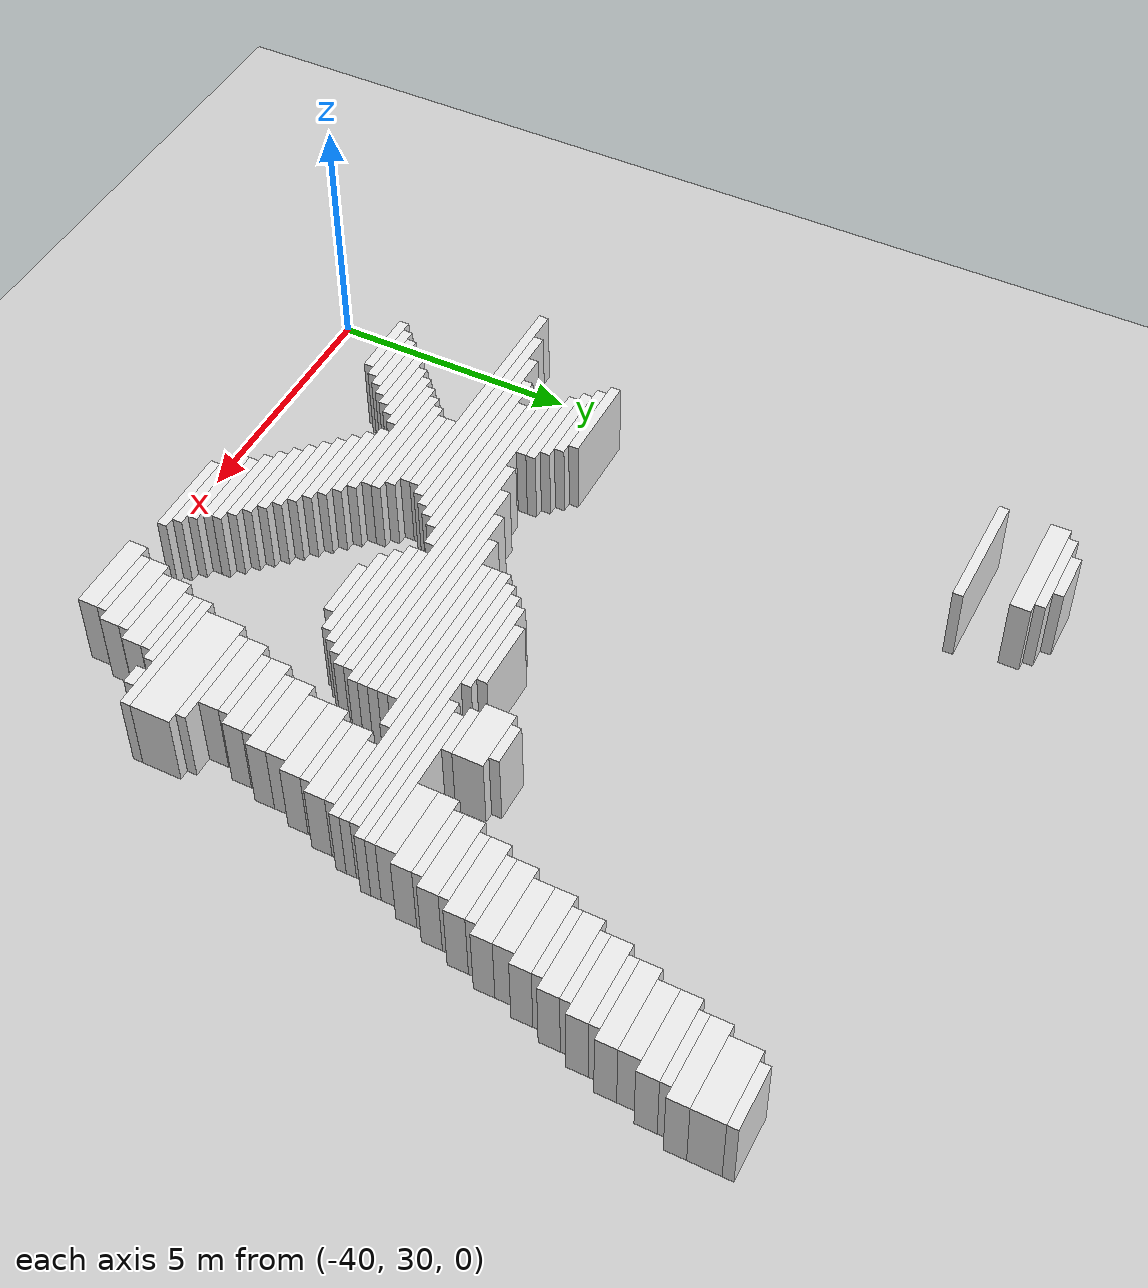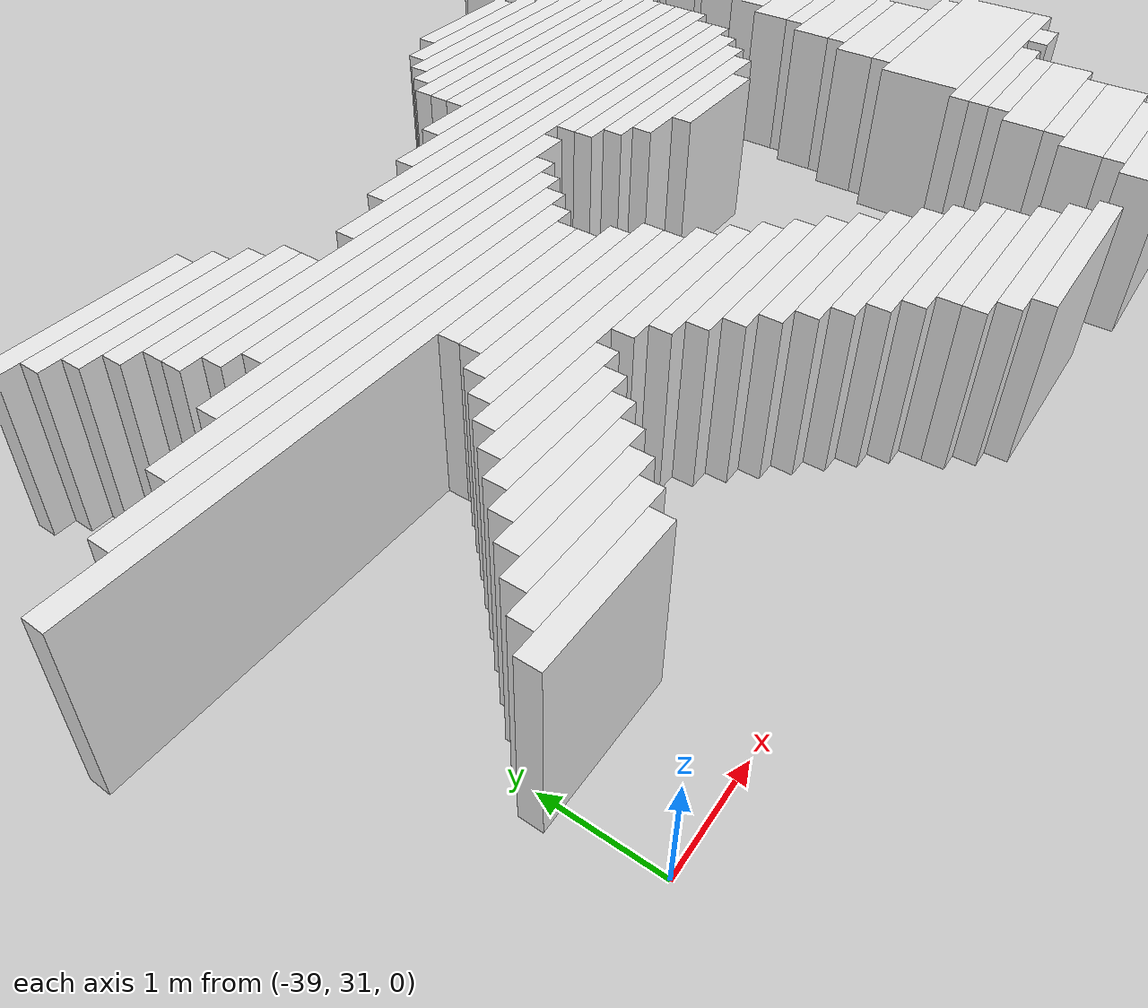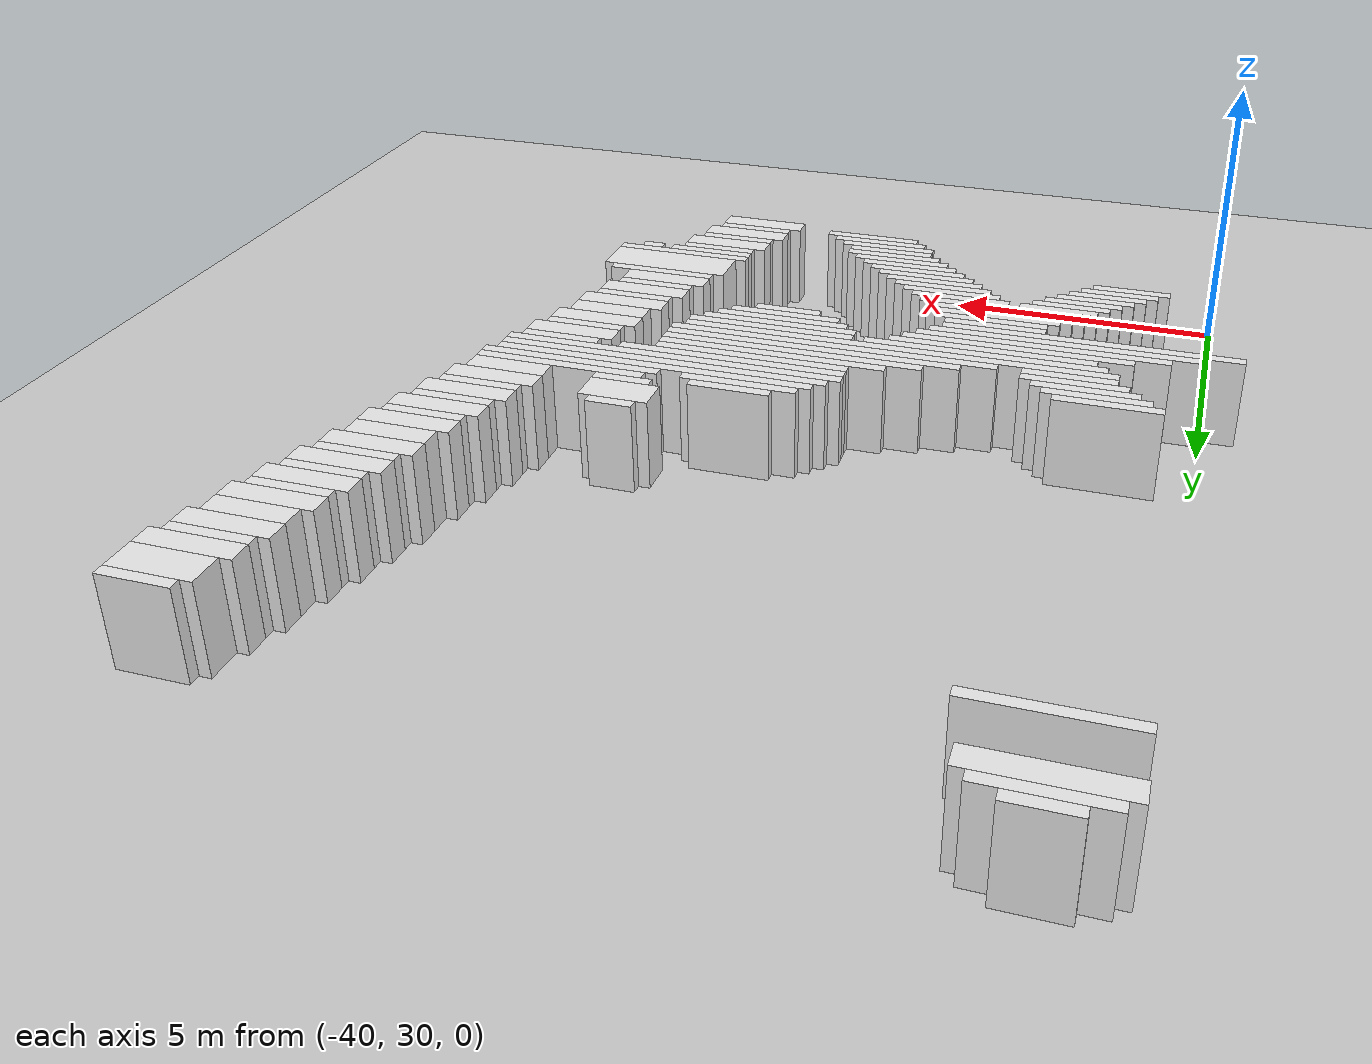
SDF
<sdf version="1.7">
 <world name="default">
  <model name="ground_plane">
   <static>1</static>
   <link name="link">
    <collision name="collision">
     <geometry><plane><normal>0 0 1</normal><size>120 120</size></plane></geometry>
    </collision>
    <visual name="visual">
     <geometry><plane><normal>0 0 1</normal><size>120 120</size></plane></geometry>
     <material>
      <script><uri>file://media/materials/scripts/gazebo.material</uri><name>Gazebo/Grey</name></script>
     </material>
    </visual>
   </link>
  </model>
  <model name="random_complex_02_model">
   <static>1</static>
   <link name="obs_86">
    <pose>-38.7000 45.9000 0.8000 0 0 0</pose>
    <collision name="obs_86_col"><geometry><box><size>1.0000 0.2000 1.6000</size></box></geometry></collision>
    <visual name="obs_86_vis">
     <geometry><box><size>1.0000 0.2000 1.6000</size></box></geometry>
     <material>
      <script><uri>file://media/materials/scripts/gazebo.material</uri><name>Gazebo/White</name></script>
     </material>
    </visual>
   </link>
   <link name="obs_92">
    <pose>-38.7000 45.7000 0.8000 0 0 0</pose>
    <collision name="obs_92_col"><geometry><box><size>1.8000 0.2000 1.6000</size></box></geometry></collision>
    <visual name="obs_92_vis">
     <geometry><box><size>1.8000 0.2000 1.6000</size></box></geometry>
     <material>
      <script><uri>file://media/materials/scripts/gazebo.material</uri><name>Gazebo/White</name></script>
     </material>
    </visual>
   </link>
   <link name="obs_107">
    <pose>-38.7000 45.4000 0.8000 0 0 0</pose>
    <collision name="obs_107_col"><geometry><box><size>2.2000 0.4000 1.6000</size></box></geometry></collision>
    <visual name="obs_107_vis">
     <geometry><box><size>2.2000 0.4000 1.6000</size></box></geometry>
     <material>
      <script><uri>file://media/materials/scripts/gazebo.material</uri><name>Gazebo/White</name></script>
     </material>
    </visual>
   </link>
   <link name="obs_119">
    <pose>-26.6000 45.1000 0.8000 0 0 0</pose>
    <collision name="obs_119_col"><geometry><box><size>1.2000 0.2000 1.6000</size></box></geometry></collision>
    <visual name="obs_119_vis">
     <geometry><box><size>1.2000 0.2000 1.6000</size></box></geometry>
     <material>
      <script><uri>file://media/materials/scripts/gazebo.material</uri><name>Gazebo/White</name></script>
     </material>
    </visual>
   </link>
   <link name="obs_144">
    <pose>-26.7000 44.7000 0.8000 0 0 0</pose>
    <collision name="obs_144_col"><geometry><box><size>1.4000 0.6000 1.6000</size></box></geometry></collision>
    <visual name="obs_144_vis">
     <geometry><box><size>1.4000 0.6000 1.6000</size></box></geometry>
     <material>
      <script><uri>file://media/materials/scripts/gazebo.material</uri><name>Gazebo/White</name></script>
     </material>
    </visual>
   </link>
   <link name="obs_152">
    <pose>-38.6000 44.3000 0.8000 0 0 0</pose>
    <collision name="obs_152_col"><geometry><box><size>2.4000 0.2000 1.6000</size></box></geometry></collision>
    <visual name="obs_152_vis">
     <geometry><box><size>2.4000 0.2000 1.6000</size></box></geometry>
     <material>
      <script><uri>file://media/materials/scripts/gazebo.material</uri><name>Gazebo/White</name></script>
     </material>
    </visual>
   </link>
   <link name="obs_157">
    <pose>-26.8000 44.2000 0.8000 0 0 0</pose>
    <collision name="obs_157_col"><geometry><box><size>1.6000 0.4000 1.6000</size></box></geometry></collision>
    <visual name="obs_157_vis">
     <geometry><box><size>1.6000 0.4000 1.6000</size></box></geometry>
     <material>
      <script><uri>file://media/materials/scripts/gazebo.material</uri><name>Gazebo/White</name></script>
     </material>
    </visual>
   </link>
   <link name="obs_169">
    <pose>-26.9000 43.9000 0.8000 0 0 0</pose>
    <collision name="obs_169_col"><geometry><box><size>1.4000 0.2000 1.6000</size></box></geometry></collision>
    <visual name="obs_169_vis">
     <geometry><box><size>1.4000 0.2000 1.6000</size></box></geometry>
     <material>
      <script><uri>file://media/materials/scripts/gazebo.material</uri><name>Gazebo/White</name></script>
     </material>
    </visual>
   </link>
   <link name="obs_179">
    <pose>-27.0000 43.6000 0.8000 0 0 0</pose>
    <collision name="obs_179_col"><geometry><box><size>1.6000 0.4000 1.6000</size></box></geometry></collision>
    <visual name="obs_179_vis">
     <geometry><box><size>1.6000 0.4000 1.6000</size></box></geometry>
     <material>
      <script><uri>file://media/materials/scripts/gazebo.material</uri><name>Gazebo/White</name></script>
     </material>
    </visual>
   </link>
   <link name="obs_194">
    <pose>-27.1000 43.2000 0.8000 0 0 0</pose>
    <collision name="obs_194_col"><geometry><box><size>1.4000 0.4000 1.6000</size></box></geometry></collision>
    <visual name="obs_194_vis">
     <geometry><box><size>1.4000 0.4000 1.6000</size></box></geometry>
     <material>
      <script><uri>file://media/materials/scripts/gazebo.material</uri><name>Gazebo/White</name></script>
     </material>
    </visual>
   </link>
   <link name="obs_208">
    <pose>-27.2000 42.8000 0.8000 0 0 0</pose>
    <collision name="obs_208_col"><geometry><box><size>1.6000 0.4000 1.6000</size></box></geometry></collision>
    <visual name="obs_208_vis">
     <geometry><box><size>1.6000 0.4000 1.6000</size></box></geometry>
     <material>
      <script><uri>file://media/materials/scripts/gazebo.material</uri><name>Gazebo/White</name></script>
     </material>
    </visual>
   </link>
   <link name="obs_218">
    <pose>-27.3000 42.5000 0.8000 0 0 0</pose>
    <collision name="obs_218_col"><geometry><box><size>1.4000 0.2000 1.6000</size></box></geometry></collision>
    <visual name="obs_218_vis">
     <geometry><box><size>1.4000 0.2000 1.6000</size></box></geometry>
     <material>
      <script><uri>file://media/materials/scripts/gazebo.material</uri><name>Gazebo/White</name></script>
     </material>
    </visual>
   </link>
   <link name="obs_228">
    <pose>-27.4000 42.2000 0.8000 0 0 0</pose>
    <collision name="obs_228_col"><geometry><box><size>1.6000 0.4000 1.6000</size></box></geometry></collision>
    <visual name="obs_228_vis">
     <geometry><box><size>1.6000 0.4000 1.6000</size></box></geometry>
     <material>
      <script><uri>file://media/materials/scripts/gazebo.material</uri><name>Gazebo/White</name></script>
     </material>
    </visual>
   </link>
   <link name="obs_239">
    <pose>-27.5000 41.9000 0.8000 0 0 0</pose>
    <collision name="obs_239_col"><geometry><box><size>1.4000 0.2000 1.6000</size></box></geometry></collision>
    <visual name="obs_239_vis">
     <geometry><box><size>1.4000 0.2000 1.6000</size></box></geometry>
     <material>
      <script><uri>file://media/materials/scripts/gazebo.material</uri><name>Gazebo/White</name></script>
     </material>
    </visual>
   </link>
   <link name="obs_252">
    <pose>-27.6000 41.6000 0.8000 0 0 0</pose>
    <collision name="obs_252_col"><geometry><box><size>1.6000 0.4000 1.6000</size></box></geometry></collision>
    <visual name="obs_252_vis">
     <geometry><box><size>1.6000 0.4000 1.6000</size></box></geometry>
     <material>
      <script><uri>file://media/materials/scripts/gazebo.material</uri><name>Gazebo/White</name></script>
     </material>
    </visual>
   </link>
   <link name="obs_263">
    <pose>-27.7000 41.3000 0.8000 0 0 0</pose>
    <collision name="obs_263_col"><geometry><box><size>1.4000 0.2000 1.6000</size></box></geometry></collision>
    <visual name="obs_263_vis">
     <geometry><box><size>1.4000 0.2000 1.6000</size></box></geometry>
     <material>
      <script><uri>file://media/materials/scripts/gazebo.material</uri><name>Gazebo/White</name></script>
     </material>
    </visual>
   </link>
   <link name="obs_279">
    <pose>-27.8000 41.0000 0.8000 0 0 0</pose>
    <collision name="obs_279_col"><geometry><box><size>1.6000 0.4000 1.6000</size></box></geometry></collision>
    <visual name="obs_279_vis">
     <geometry><box><size>1.6000 0.4000 1.6000</size></box></geometry>
     <material>
      <script><uri>file://media/materials/scripts/gazebo.material</uri><name>Gazebo/White</name></script>
     </material>
    </visual>
   </link>
   <link name="obs_299">
    <pose>-27.9000 40.6000 0.8000 0 0 0</pose>
    <collision name="obs_299_col"><geometry><box><size>1.4000 0.4000 1.6000</size></box></geometry></collision>
    <visual name="obs_299_vis">
     <geometry><box><size>1.4000 0.4000 1.6000</size></box></geometry>
     <material>
      <script><uri>file://media/materials/scripts/gazebo.material</uri><name>Gazebo/White</name></script>
     </material>
    </visual>
   </link>
   <link name="obs_319">
    <pose>-28.0000 40.2000 0.8000 0 0 0</pose>
    <collision name="obs_319_col"><geometry><box><size>1.6000 0.4000 1.6000</size></box></geometry></collision>
    <visual name="obs_319_vis">
     <geometry><box><size>1.6000 0.4000 1.6000</size></box></geometry>
     <material>
      <script><uri>file://media/materials/scripts/gazebo.material</uri><name>Gazebo/White</name></script>
     </material>
    </visual>
   </link>
   <link name="obs_332">
    <pose>-28.1000 39.9000 0.8000 0 0 0</pose>
    <collision name="obs_332_col"><geometry><box><size>1.4000 0.2000 1.6000</size></box></geometry></collision>
    <visual name="obs_332_vis">
     <geometry><box><size>1.4000 0.2000 1.6000</size></box></geometry>
     <material>
      <script><uri>file://media/materials/scripts/gazebo.material</uri><name>Gazebo/White</name></script>
     </material>
    </visual>
   </link>
   <link name="obs_344">
    <pose>-28.2000 39.6000 0.8000 0 0 0</pose>
    <collision name="obs_344_col"><geometry><box><size>1.6000 0.4000 1.6000</size></box></geometry></collision>
    <visual name="obs_344_vis">
     <geometry><box><size>1.6000 0.4000 1.6000</size></box></geometry>
     <material>
      <script><uri>file://media/materials/scripts/gazebo.material</uri><name>Gazebo/White</name></script>
     </material>
    </visual>
   </link>
   <link name="obs_357">
    <pose>-28.3000 39.3000 0.8000 0 0 0</pose>
    <collision name="obs_357_col"><geometry><box><size>1.4000 0.2000 1.6000</size></box></geometry></collision>
    <visual name="obs_357_vis">
     <geometry><box><size>1.4000 0.2000 1.6000</size></box></geometry>
     <material>
      <script><uri>file://media/materials/scripts/gazebo.material</uri><name>Gazebo/White</name></script>
     </material>
    </visual>
   </link>
   <link name="obs_371">
    <pose>-28.4000 39.0000 0.8000 0 0 0</pose>
    <collision name="obs_371_col"><geometry><box><size>1.6000 0.4000 1.6000</size></box></geometry></collision>
    <visual name="obs_371_vis">
     <geometry><box><size>1.6000 0.4000 1.6000</size></box></geometry>
     <material>
      <script><uri>file://media/materials/scripts/gazebo.material</uri><name>Gazebo/White</name></script>
     </material>
    </visual>
   </link>
   <link name="obs_381">
    <pose>-30.8000 38.7000 0.8000 0 0 0</pose>
    <collision name="obs_381_col"><geometry><box><size>0.8000 0.2000 1.6000</size></box></geometry></collision>
    <visual name="obs_381_vis">
     <geometry><box><size>0.8000 0.2000 1.6000</size></box></geometry>
     <material>
      <script><uri>file://media/materials/scripts/gazebo.material</uri><name>Gazebo/White</name></script>
     </material>
    </visual>
   </link>
   <link name="obs_382">
    <pose>-28.5000 38.7000 0.8000 0 0 0</pose>
    <collision name="obs_382_col"><geometry><box><size>1.4000 0.2000 1.6000</size></box></geometry></collision>
    <visual name="obs_382_vis">
     <geometry><box><size>1.4000 0.2000 1.6000</size></box></geometry>
     <material>
      <script><uri>file://media/materials/scripts/gazebo.material</uri><name>Gazebo/White</name></script>
     </material>
    </visual>
   </link>
   <link name="obs_402">
    <pose>-28.6000 38.4000 0.8000 0 0 0</pose>
    <collision name="obs_402_col"><geometry><box><size>1.6000 0.4000 1.6000</size></box></geometry></collision>
    <visual name="obs_402_vis">
     <geometry><box><size>1.6000 0.4000 1.6000</size></box></geometry>
     <material>
      <script><uri>file://media/materials/scripts/gazebo.material</uri><name>Gazebo/White</name></script>
     </material>
    </visual>
   </link>
   <link name="obs_411">
    <pose>-30.8000 38.3000 0.8000 0 0 0</pose>
    <collision name="obs_411_col"><geometry><box><size>1.2000 0.6000 1.6000</size></box></geometry></collision>
    <visual name="obs_411_vis">
     <geometry><box><size>1.2000 0.6000 1.6000</size></box></geometry>
     <material>
      <script><uri>file://media/materials/scripts/gazebo.material</uri><name>Gazebo/White</name></script>
     </material>
    </visual>
   </link>
   <link name="obs_418">
    <pose>-28.7000 38.0000 0.8000 0 0 0</pose>
    <collision name="obs_418_col"><geometry><box><size>1.4000 0.4000 1.6000</size></box></geometry></collision>
    <visual name="obs_418_vis">
     <geometry><box><size>1.4000 0.4000 1.6000</size></box></geometry>
     <material>
      <script><uri>file://media/materials/scripts/gazebo.material</uri><name>Gazebo/White</name></script>
     </material>
    </visual>
   </link>
   <link name="obs_421">
    <pose>-30.7000 37.9000 0.8000 0 0 0</pose>
    <collision name="obs_421_col"><geometry><box><size>1.0000 0.2000 1.6000</size></box></geometry></collision>
    <visual name="obs_421_vis">
     <geometry><box><size>1.0000 0.2000 1.6000</size></box></geometry>
     <material>
      <script><uri>file://media/materials/scripts/gazebo.material</uri><name>Gazebo/White</name></script>
     </material>
    </visual>
   </link>
   <link name="obs_429">
    <pose>-32.5000 37.7000 0.8000 0 0 0</pose>
    <collision name="obs_429_col"><geometry><box><size>1.4000 0.2000 1.6000</size></box></geometry></collision>
    <visual name="obs_429_vis">
     <geometry><box><size>1.4000 0.2000 1.6000</size></box></geometry>
     <material>
      <script><uri>file://media/materials/scripts/gazebo.material</uri><name>Gazebo/White</name></script>
     </material>
    </visual>
   </link>
   <link name="obs_430">
    <pose>-29.5000 37.7000 0.8000 0 0 0</pose>
    <collision name="obs_430_col"><geometry><box><size>3.0000 0.2000 1.6000</size></box></geometry></collision>
    <visual name="obs_430_vis">
     <geometry><box><size>3.0000 0.2000 1.6000</size></box></geometry>
     <material>
      <script><uri>file://media/materials/scripts/gazebo.material</uri><name>Gazebo/White</name></script>
     </material>
    </visual>
   </link>
   <link name="obs_438">
    <pose>-32.6000 37.5000 0.8000 0 0 0</pose>
    <collision name="obs_438_col"><geometry><box><size>2.0000 0.2000 1.6000</size></box></geometry></collision>
    <visual name="obs_438_vis">
     <geometry><box><size>2.0000 0.2000 1.6000</size></box></geometry>
     <material>
      <script><uri>file://media/materials/scripts/gazebo.material</uri><name>Gazebo/White</name></script>
     </material>
    </visual>
   </link>
   <link name="obs_439">
    <pose>-29.6000 37.5000 0.8000 0 0 0</pose>
    <collision name="obs_439_col"><geometry><box><size>3.2000 0.2000 1.6000</size></box></geometry></collision>
    <visual name="obs_439_vis">
     <geometry><box><size>3.2000 0.2000 1.6000</size></box></geometry>
     <material>
      <script><uri>file://media/materials/scripts/gazebo.material</uri><name>Gazebo/White</name></script>
     </material>
    </visual>
   </link>
   <link name="obs_446">
    <pose>-31.0000 37.3000 0.8000 0 0 0</pose>
    <collision name="obs_446_col"><geometry><box><size>5.6000 0.2000 1.6000</size></box></geometry></collision>
    <visual name="obs_446_vis">
     <geometry><box><size>5.6000 0.2000 1.6000</size></box></geometry>
     <material>
      <script><uri>file://media/materials/scripts/gazebo.material</uri><name>Gazebo/White</name></script>
     </material>
    </visual>
   </link>
   <link name="obs_451">
    <pose>-31.1000 37.1000 0.8000 0 0 0</pose>
    <collision name="obs_451_col"><geometry><box><size>5.8000 0.2000 1.6000</size></box></geometry></collision>
    <visual name="obs_451_vis">
     <geometry><box><size>5.8000 0.2000 1.6000</size></box></geometry>
     <material>
      <script><uri>file://media/materials/scripts/gazebo.material</uri><name>Gazebo/White</name></script>
     </material>
    </visual>
   </link>
   <link name="obs_459">
    <pose>-31.2000 36.9000 0.8000 0 0 0</pose>
    <collision name="obs_459_col"><geometry><box><size>6.0000 0.2000 1.6000</size></box></geometry></collision>
    <visual name="obs_459_vis">
     <geometry><box><size>6.0000 0.2000 1.6000</size></box></geometry>
     <material>
      <script><uri>file://media/materials/scripts/gazebo.material</uri><name>Gazebo/White</name></script>
     </material>
    </visual>
   </link>
   <link name="obs_463">
    <pose>-32.2000 36.7000 0.8000 0 0 0</pose>
    <collision name="obs_463_col"><geometry><box><size>4.0000 0.2000 1.6000</size></box></geometry></collision>
    <visual name="obs_463_vis">
     <geometry><box><size>4.0000 0.2000 1.6000</size></box></geometry>
     <material>
      <script><uri>file://media/materials/scripts/gazebo.material</uri><name>Gazebo/White</name></script>
     </material>
    </visual>
   </link>
   <link name="obs_464">
    <pose>-29.1000 36.7000 0.8000 0 0 0</pose>
    <collision name="obs_464_col"><geometry><box><size>1.4000 0.2000 1.6000</size></box></geometry></collision>
    <visual name="obs_464_vis">
     <geometry><box><size>1.4000 0.2000 1.6000</size></box></geometry>
     <material>
      <script><uri>file://media/materials/scripts/gazebo.material</uri><name>Gazebo/White</name></script>
     </material>
    </visual>
   </link>
   <link name="obs_471">
    <pose>-38.5000 36.5000 0.8000 0 0 0</pose>
    <collision name="obs_471_col"><geometry><box><size>1.8000 0.2000 1.6000</size></box></geometry></collision>
    <visual name="obs_471_vis">
     <geometry><box><size>1.8000 0.2000 1.6000</size></box></geometry>
     <material>
      <script><uri>file://media/materials/scripts/gazebo.material</uri><name>Gazebo/White</name></script>
     </material>
    </visual>
   </link>
   <link name="obs_472">
    <pose>-32.5000 36.5000 0.8000 0 0 0</pose>
    <collision name="obs_472_col"><geometry><box><size>3.4000 0.2000 1.6000</size></box></geometry></collision>
    <visual name="obs_472_vis">
     <geometry><box><size>3.4000 0.2000 1.6000</size></box></geometry>
     <material>
      <script><uri>file://media/materials/scripts/gazebo.material</uri><name>Gazebo/White</name></script>
     </material>
    </visual>
   </link>
   <link name="obs_477">
    <pose>-29.2000 36.4000 0.8000 0 0 0</pose>
    <collision name="obs_477_col"><geometry><box><size>1.6000 0.4000 1.6000</size></box></geometry></collision>
    <visual name="obs_477_vis">
     <geometry><box><size>1.6000 0.4000 1.6000</size></box></geometry>
     <material>
      <script><uri>file://media/materials/scripts/gazebo.material</uri><name>Gazebo/White</name></script>
     </material>
    </visual>
   </link>
   <link name="obs_480">
    <pose>-38.3000 36.3000 0.8000 0 0 0</pose>
    <collision name="obs_480_col"><geometry><box><size>1.8000 0.2000 1.6000</size></box></geometry></collision>
    <visual name="obs_480_vis">
     <geometry><box><size>1.8000 0.2000 1.6000</size></box></geometry>
     <material>
      <script><uri>file://media/materials/scripts/gazebo.material</uri><name>Gazebo/White</name></script>
     </material>
    </visual>
   </link>
   <link name="obs_481">
    <pose>-32.8000 36.3000 0.8000 0 0 0</pose>
    <collision name="obs_481_col"><geometry><box><size>4.0000 0.2000 1.6000</size></box></geometry></collision>
    <visual name="obs_481_vis">
     <geometry><box><size>4.0000 0.2000 1.6000</size></box></geometry>
     <material>
      <script><uri>file://media/materials/scripts/gazebo.material</uri><name>Gazebo/White</name></script>
     </material>
    </visual>
   </link>
   <link name="obs_489">
    <pose>-38.1000 36.1000 0.8000 0 0 0</pose>
    <collision name="obs_489_col"><geometry><box><size>1.8000 0.2000 1.6000</size></box></geometry></collision>
    <visual name="obs_489_vis">
     <geometry><box><size>1.8000 0.2000 1.6000</size></box></geometry>
     <material>
      <script><uri>file://media/materials/scripts/gazebo.material</uri><name>Gazebo/White</name></script>
     </material>
    </visual>
   </link>
   <link name="obs_490">
    <pose>-33.1000 36.1000 0.8000 0 0 0</pose>
    <collision name="obs_490_col"><geometry><box><size>4.6000 0.2000 1.6000</size></box></geometry></collision>
    <visual name="obs_490_vis">
     <geometry><box><size>4.6000 0.2000 1.6000</size></box></geometry>
     <material>
      <script><uri>file://media/materials/scripts/gazebo.material</uri><name>Gazebo/White</name></script>
     </material>
    </visual>
   </link>
   <link name="obs_491">
    <pose>-29.3000 36.1000 0.8000 0 0 0</pose>
    <collision name="obs_491_col"><geometry><box><size>1.4000 0.2000 1.6000</size></box></geometry></collision>
    <visual name="obs_491_vis">
     <geometry><box><size>1.4000 0.2000 1.6000</size></box></geometry>
     <material>
      <script><uri>file://media/materials/scripts/gazebo.material</uri><name>Gazebo/White</name></script>
     </material>
    </visual>
   </link>
   <link name="obs_500">
    <pose>-37.9000 35.9000 0.8000 0 0 0</pose>
    <collision name="obs_500_col"><geometry><box><size>1.8000 0.2000 1.6000</size></box></geometry></collision>
    <visual name="obs_500_vis">
     <geometry><box><size>1.8000 0.2000 1.6000</size></box></geometry>
     <material>
      <script><uri>file://media/materials/scripts/gazebo.material</uri><name>Gazebo/White</name></script>
     </material>
    </visual>
   </link>
   <link name="obs_501">
    <pose>-33.4000 35.9000 0.8000 0 0 0</pose>
    <collision name="obs_501_col"><geometry><box><size>5.2000 0.2000 1.6000</size></box></geometry></collision>
    <visual name="obs_501_vis">
     <geometry><box><size>5.2000 0.2000 1.6000</size></box></geometry>
     <material>
      <script><uri>file://media/materials/scripts/gazebo.material</uri><name>Gazebo/White</name></script>
     </material>
    </visual>
   </link>
   <link name="obs_508">
    <pose>-29.4000 35.8000 0.8000 0 0 0</pose>
    <collision name="obs_508_col"><geometry><box><size>1.6000 0.4000 1.6000</size></box></geometry></collision>
    <visual name="obs_508_vis">
     <geometry><box><size>1.6000 0.4000 1.6000</size></box></geometry>
     <material>
      <script><uri>file://media/materials/scripts/gazebo.material</uri><name>Gazebo/White</name></script>
     </material>
    </visual>
   </link>
   <link name="obs_511">
    <pose>-37.8000 35.7000 0.8000 0 0 0</pose>
    <collision name="obs_511_col"><geometry><box><size>1.6000 0.2000 1.6000</size></box></geometry></collision>
    <visual name="obs_511_vis">
     <geometry><box><size>1.6000 0.2000 1.6000</size></box></geometry>
     <material>
      <script><uri>file://media/materials/scripts/gazebo.material</uri><name>Gazebo/White</name></script>
     </material>
    </visual>
   </link>
   <link name="obs_512">
    <pose>-33.7000 35.7000 0.8000 0 0 0</pose>
    <collision name="obs_512_col"><geometry><box><size>5.8000 0.2000 1.6000</size></box></geometry></collision>
    <visual name="obs_512_vis">
     <geometry><box><size>5.8000 0.2000 1.6000</size></box></geometry>
     <material>
      <script><uri>file://media/materials/scripts/gazebo.material</uri><name>Gazebo/White</name></script>
     </material>
    </visual>
   </link>
   <link name="obs_518">
    <pose>-34.8000 35.5000 0.8000 0 0 0</pose>
    <collision name="obs_518_col"><geometry><box><size>7.6000 0.2000 1.6000</size></box></geometry></collision>
    <visual name="obs_518_vis">
     <geometry><box><size>7.6000 0.2000 1.6000</size></box></geometry>
     <material>
      <script><uri>file://media/materials/scripts/gazebo.material</uri><name>Gazebo/White</name></script>
     </material>
    </visual>
   </link>
   <link name="obs_526">
    <pose>-29.5000 35.4000 0.8000 0 0 0</pose>
    <collision name="obs_526_col"><geometry><box><size>1.4000 0.4000 1.6000</size></box></geometry></collision>
    <visual name="obs_526_vis">
     <geometry><box><size>1.4000 0.4000 1.6000</size></box></geometry>
     <material>
      <script><uri>file://media/materials/scripts/gazebo.material</uri><name>Gazebo/White</name></script>
     </material>
    </visual>
   </link>
   <link name="obs_528">
    <pose>-36.3000 35.3000 0.8000 0 0 0</pose>
    <collision name="obs_528_col"><geometry><box><size>4.2000 0.2000 1.6000</size></box></geometry></collision>
    <visual name="obs_528_vis">
     <geometry><box><size>4.2000 0.2000 1.6000</size></box></geometry>
     <material>
      <script><uri>file://media/materials/scripts/gazebo.material</uri><name>Gazebo/White</name></script>
     </material>
    </visual>
   </link>
   <link name="obs_529">
    <pose>-32.5000 35.3000 0.8000 0 0 0</pose>
    <collision name="obs_529_col"><geometry><box><size>3.0000 0.2000 1.6000</size></box></geometry></collision>
    <visual name="obs_529_vis">
     <geometry><box><size>3.0000 0.2000 1.6000</size></box></geometry>
     <material>
      <script><uri>file://media/materials/scripts/gazebo.material</uri><name>Gazebo/White</name></script>
     </material>
    </visual>
   </link>
   <link name="obs_537">
    <pose>-36.4000 35.1000 0.8000 0 0 0</pose>
    <collision name="obs_537_col"><geometry><box><size>3.6000 0.2000 1.6000</size></box></geometry></collision>
    <visual name="obs_537_vis">
     <geometry><box><size>3.6000 0.2000 1.6000</size></box></geometry>
     <material>
      <script><uri>file://media/materials/scripts/gazebo.material</uri><name>Gazebo/White</name></script>
     </material>
    </visual>
   </link>
   <link name="obs_538">
    <pose>-32.6000 35.1000 0.8000 0 0 0</pose>
    <collision name="obs_538_col"><geometry><box><size>2.8000 0.2000 1.6000</size></box></geometry></collision>
    <visual name="obs_538_vis">
     <geometry><box><size>2.8000 0.2000 1.6000</size></box></geometry>
     <material>
      <script><uri>file://media/materials/scripts/gazebo.material</uri><name>Gazebo/White</name></script>
     </material>
    </visual>
   </link>
   <link name="obs_544">
    <pose>-29.6000 35.0000 0.8000 0 0 0</pose>
    <collision name="obs_544_col"><geometry><box><size>1.6000 0.4000 1.6000</size></box></geometry></collision>
    <visual name="obs_544_vis">
     <geometry><box><size>1.6000 0.4000 1.6000</size></box></geometry>
     <material>
      <script><uri>file://media/materials/scripts/gazebo.material</uri><name>Gazebo/White</name></script>
     </material>
    </visual>
   </link>
   <link name="obs_546">
    <pose>-36.8000 34.9000 0.8000 0 0 0</pose>
    <collision name="obs_546_col"><geometry><box><size>4.0000 0.2000 1.6000</size></box></geometry></collision>
    <visual name="obs_546_vis">
     <geometry><box><size>4.0000 0.2000 1.6000</size></box></geometry>
     <material>
      <script><uri>file://media/materials/scripts/gazebo.material</uri><name>Gazebo/White</name></script>
     </material>
    </visual>
   </link>
   <link name="obs_547">
    <pose>-32.6000 34.9000 0.8000 0 0 0</pose>
    <collision name="obs_547_col"><geometry><box><size>2.4000 0.2000 1.6000</size></box></geometry></collision>
    <visual name="obs_547_vis">
     <geometry><box><size>2.4000 0.2000 1.6000</size></box></geometry>
     <material>
      <script><uri>file://media/materials/scripts/gazebo.material</uri><name>Gazebo/White</name></script>
     </material>
    </visual>
   </link>
   <link name="obs_554">
    <pose>-37.2000 34.7000 0.8000 0 0 0</pose>
    <collision name="obs_554_col"><geometry><box><size>4.4000 0.2000 1.6000</size></box></geometry></collision>
    <visual name="obs_554_vis">
     <geometry><box><size>4.4000 0.2000 1.6000</size></box></geometry>
     <material>
      <script><uri>file://media/materials/scripts/gazebo.material</uri><name>Gazebo/White</name></script>
     </material>
    </visual>
   </link>
   <link name="obs_555">
    <pose>-32.6000 34.7000 0.8000 0 0 0</pose>
    <collision name="obs_555_col"><geometry><box><size>2.0000 0.2000 1.6000</size></box></geometry></collision>
    <visual name="obs_555_vis">
     <geometry><box><size>2.0000 0.2000 1.6000</size></box></geometry>
     <material>
      <script><uri>file://media/materials/scripts/gazebo.material</uri><name>Gazebo/White</name></script>
     </material>
    </visual>
   </link>
   <link name="obs_556">
    <pose>-29.7000 34.7000 0.8000 0 0 0</pose>
    <collision name="obs_556_col"><geometry><box><size>1.4000 0.2000 1.6000</size></box></geometry></collision>
    <visual name="obs_556_vis">
     <geometry><box><size>1.4000 0.2000 1.6000</size></box></geometry>
     <material>
      <script><uri>file://media/materials/scripts/gazebo.material</uri><name>Gazebo/White</name></script>
     </material>
    </visual>
   </link>
   <link name="obs_564">
    <pose>-37.6000 34.5000 0.8000 0 0 0</pose>
    <collision name="obs_564_col"><geometry><box><size>4.8000 0.2000 1.6000</size></box></geometry></collision>
    <visual name="obs_564_vis">
     <geometry><box><size>4.8000 0.2000 1.6000</size></box></geometry>
     <material>
      <script><uri>file://media/materials/scripts/gazebo.material</uri><name>Gazebo/White</name></script>
     </material>
    </visual>
   </link>
   <link name="obs_565">
    <pose>-32.6000 34.5000 0.8000 0 0 0</pose>
    <collision name="obs_565_col"><geometry><box><size>1.2000 0.2000 1.6000</size></box></geometry></collision>
    <visual name="obs_565_vis">
     <geometry><box><size>1.2000 0.2000 1.6000</size></box></geometry>
     <material>
      <script><uri>file://media/materials/scripts/gazebo.material</uri><name>Gazebo/White</name></script>
     </material>
    </visual>
   </link>
   <link name="obs_572">
    <pose>-29.8000 34.4000 0.8000 0 0 0</pose>
    <collision name="obs_572_col"><geometry><box><size>1.6000 0.4000 1.6000</size></box></geometry></collision>
    <visual name="obs_572_vis">
     <geometry><box><size>1.6000 0.4000 1.6000</size></box></geometry>
     <material>
      <script><uri>file://media/materials/scripts/gazebo.material</uri><name>Gazebo/White</name></script>
     </material>
    </visual>
   </link>
   <link name="obs_573">
    <pose>-38.0000 34.3000 0.8000 0 0 0</pose>
    <collision name="obs_573_col"><geometry><box><size>5.2000 0.2000 1.6000</size></box></geometry></collision>
    <visual name="obs_573_vis">
     <geometry><box><size>5.2000 0.2000 1.6000</size></box></geometry>
     <material>
      <script><uri>file://media/materials/scripts/gazebo.material</uri><name>Gazebo/White</name></script>
     </material>
    </visual>
   </link>
   <link name="obs_580">
    <pose>-36.3000 34.1000 0.8000 0 0 0</pose>
    <collision name="obs_580_col"><geometry><box><size>1.8000 0.2000 1.6000</size></box></geometry></collision>
    <visual name="obs_580_vis">
     <geometry><box><size>1.8000 0.2000 1.6000</size></box></geometry>
     <material>
      <script><uri>file://media/materials/scripts/gazebo.material</uri><name>Gazebo/White</name></script>
     </material>
    </visual>
   </link>
   <link name="obs_581">
    <pose>-29.9000 34.1000 0.8000 0 0 0</pose>
    <collision name="obs_581_col"><geometry><box><size>1.4000 0.2000 1.6000</size></box></geometry></collision>
    <visual name="obs_581_vis">
     <geometry><box><size>1.4000 0.2000 1.6000</size></box></geometry>
     <material>
      <script><uri>file://media/materials/scripts/gazebo.material</uri><name>Gazebo/White</name></script>
     </material>
    </visual>
   </link>
   <link name="obs_591">
    <pose>-36.2000 33.9000 0.8000 0 0 0</pose>
    <collision name="obs_591_col"><geometry><box><size>2.0000 0.2000 1.6000</size></box></geometry></collision>
    <visual name="obs_591_vis">
     <geometry><box><size>2.0000 0.2000 1.6000</size></box></geometry>
     <material>
      <script><uri>file://media/materials/scripts/gazebo.material</uri><name>Gazebo/White</name></script>
     </material>
    </visual>
   </link>
   <link name="obs_597">
    <pose>-30.0000 33.8000 0.8000 0 0 0</pose>
    <collision name="obs_597_col"><geometry><box><size>1.6000 0.4000 1.6000</size></box></geometry></collision>
    <visual name="obs_597_vis">
     <geometry><box><size>1.6000 0.4000 1.6000</size></box></geometry>
     <material>
      <script><uri>file://media/materials/scripts/gazebo.material</uri><name>Gazebo/White</name></script>
     </material>
    </visual>
   </link>
   <link name="obs_600">
    <pose>-36.2000 33.7000 0.8000 0 0 0</pose>
    <collision name="obs_600_col"><geometry><box><size>2.4000 0.2000 1.6000</size></box></geometry></collision>
    <visual name="obs_600_vis">
     <geometry><box><size>2.4000 0.2000 1.6000</size></box></geometry>
     <material>
      <script><uri>file://media/materials/scripts/gazebo.material</uri><name>Gazebo/White</name></script>
     </material>
    </visual>
   </link>
   <link name="obs_608">
    <pose>-36.3000 33.5000 0.8000 0 0 0</pose>
    <collision name="obs_608_col"><geometry><box><size>2.6000 0.2000 1.6000</size></box></geometry></collision>
    <visual name="obs_608_vis">
     <geometry><box><size>2.6000 0.2000 1.6000</size></box></geometry>
     <material>
      <script><uri>file://media/materials/scripts/gazebo.material</uri><name>Gazebo/White</name></script>
     </material>
    </visual>
   </link>
   <link name="obs_609">
    <pose>-29.8000 33.5000 0.8000 0 0 0</pose>
    <collision name="obs_609_col"><geometry><box><size>2.0000 0.2000 1.6000</size></box></geometry></collision>
    <visual name="obs_609_vis">
     <geometry><box><size>2.0000 0.2000 1.6000</size></box></geometry>
     <material>
      <script><uri>file://media/materials/scripts/gazebo.material</uri><name>Gazebo/White</name></script>
     </material>
    </visual>
   </link>
   <link name="obs_618">
    <pose>-36.3000 33.3000 0.8000 0 0 0</pose>
    <collision name="obs_618_col"><geometry><box><size>3.0000 0.2000 1.6000</size></box></geometry></collision>
    <visual name="obs_618_vis">
     <geometry><box><size>3.0000 0.2000 1.6000</size></box></geometry>
     <material>
      <script><uri>file://media/materials/scripts/gazebo.material</uri><name>Gazebo/White</name></script>
     </material>
    </visual>
   </link>
   <link name="obs_628">
    <pose>-37.3000 33.1000 0.8000 0 0 0</pose>
    <collision name="obs_628_col"><geometry><box><size>1.4000 0.2000 1.6000</size></box></geometry></collision>
    <visual name="obs_628_vis">
     <geometry><box><size>1.4000 0.2000 1.6000</size></box></geometry>
     <material>
      <script><uri>file://media/materials/scripts/gazebo.material</uri><name>Gazebo/White</name></script>
     </material>
    </visual>
   </link>
   <link name="obs_629">
    <pose>-35.5000 33.1000 0.8000 0 0 0</pose>
    <collision name="obs_629_col"><geometry><box><size>1.8000 0.2000 1.6000</size></box></geometry></collision>
    <visual name="obs_629_vis">
     <geometry><box><size>1.8000 0.2000 1.6000</size></box></geometry>
     <material>
      <script><uri>file://media/materials/scripts/gazebo.material</uri><name>Gazebo/White</name></script>
     </material>
    </visual>
   </link>
   <link name="obs_637">
    <pose>-37.5000 32.9000 0.8000 0 0 0</pose>
    <collision name="obs_637_col"><geometry><box><size>1.4000 0.2000 1.6000</size></box></geometry></collision>
    <visual name="obs_637_vis">
     <geometry><box><size>1.4000 0.2000 1.6000</size></box></geometry>
     <material>
      <script><uri>file://media/materials/scripts/gazebo.material</uri><name>Gazebo/White</name></script>
     </material>
    </visual>
   </link>
   <link name="obs_638">
    <pose>-35.3000 32.9000 0.8000 0 0 0</pose>
    <collision name="obs_638_col"><geometry><box><size>1.8000 0.2000 1.6000</size></box></geometry></collision>
    <visual name="obs_638_vis">
     <geometry><box><size>1.8000 0.2000 1.6000</size></box></geometry>
     <material>
      <script><uri>file://media/materials/scripts/gazebo.material</uri><name>Gazebo/White</name></script>
     </material>
    </visual>
   </link>
   <link name="obs_642">
    <pose>-29.8000 33.0000 0.8000 0 0 0</pose>
    <collision name="obs_642_col"><geometry><box><size>2.4000 0.8000 1.6000</size></box></geometry></collision>
    <visual name="obs_642_vis">
     <geometry><box><size>2.4000 0.8000 1.6000</size></box></geometry>
     <material>
      <script><uri>file://media/materials/scripts/gazebo.material</uri><name>Gazebo/White</name></script>
     </material>
    </visual>
   </link>
   <link name="obs_647">
    <pose>-37.7000 32.7000 0.8000 0 0 0</pose>
    <collision name="obs_647_col"><geometry><box><size>1.4000 0.2000 1.6000</size></box></geometry></collision>
    <visual name="obs_647_vis">
     <geometry><box><size>1.4000 0.2000 1.6000</size></box></geometry>
     <material>
      <script><uri>file://media/materials/scripts/gazebo.material</uri><name>Gazebo/White</name></script>
     </material>
    </visual>
   </link>
   <link name="obs_648">
    <pose>-35.1000 32.7000 0.8000 0 0 0</pose>
    <collision name="obs_648_col"><geometry><box><size>1.8000 0.2000 1.6000</size></box></geometry></collision>
    <visual name="obs_648_vis">
     <geometry><box><size>1.8000 0.2000 1.6000</size></box></geometry>
     <material>
      <script><uri>file://media/materials/scripts/gazebo.material</uri><name>Gazebo/White</name></script>
     </material>
    </visual>
   </link>
   <link name="obs_653">
    <pose>-37.9000 32.5000 0.8000 0 0 0</pose>
    <collision name="obs_653_col"><geometry><box><size>1.4000 0.2000 1.6000</size></box></geometry></collision>
    <visual name="obs_653_vis">
     <geometry><box><size>1.4000 0.2000 1.6000</size></box></geometry>
     <material>
      <script><uri>file://media/materials/scripts/gazebo.material</uri><name>Gazebo/White</name></script>
     </material>
    </visual>
   </link>
   <link name="obs_654">
    <pose>-34.9000 32.5000 0.8000 0 0 0</pose>
    <collision name="obs_654_col"><geometry><box><size>1.8000 0.2000 1.6000</size></box></geometry></collision>
    <visual name="obs_654_vis">
     <geometry><box><size>1.8000 0.2000 1.6000</size></box></geometry>
     <material>
      <script><uri>file://media/materials/scripts/gazebo.material</uri><name>Gazebo/White</name></script>
     </material>
    </visual>
   </link>
   <link name="obs_655">
    <pose>-29.9000 32.5000 0.8000 0 0 0</pose>
    <collision name="obs_655_col"><geometry><box><size>2.6000 0.2000 1.6000</size></box></geometry></collision>
    <visual name="obs_655_vis">
     <geometry><box><size>2.6000 0.2000 1.6000</size></box></geometry>
     <material>
      <script><uri>file://media/materials/scripts/gazebo.material</uri><name>Gazebo/White</name></script>
     </material>
    </visual>
   </link>
   <link name="obs_661">
    <pose>-38.1000 32.3000 0.8000 0 0 0</pose>
    <collision name="obs_661_col"><geometry><box><size>1.4000 0.2000 1.6000</size></box></geometry></collision>
    <visual name="obs_661_vis">
     <geometry><box><size>1.4000 0.2000 1.6000</size></box></geometry>
     <material>
      <script><uri>file://media/materials/scripts/gazebo.material</uri><name>Gazebo/White</name></script>
     </material>
    </visual>
   </link>
   <link name="obs_662">
    <pose>-34.7000 32.3000 0.8000 0 0 0</pose>
    <collision name="obs_662_col"><geometry><box><size>1.8000 0.2000 1.6000</size></box></geometry></collision>
    <visual name="obs_662_vis">
     <geometry><box><size>1.8000 0.2000 1.6000</size></box></geometry>
     <material>
      <script><uri>file://media/materials/scripts/gazebo.material</uri><name>Gazebo/White</name></script>
     </material>
    </visual>
   </link>
   <link name="obs_663">
    <pose>-30.4000 32.3000 0.8000 0 0 0</pose>
    <collision name="obs_663_col"><geometry><box><size>1.6000 0.2000 1.6000</size></box></geometry></collision>
    <visual name="obs_663_vis">
     <geometry><box><size>1.6000 0.2000 1.6000</size></box></geometry>
     <material>
      <script><uri>file://media/materials/scripts/gazebo.material</uri><name>Gazebo/White</name></script>
     </material>
    </visual>
   </link>
   <link name="obs_664">
    <pose>-29.2000 32.3000 0.8000 0 0 0</pose>
    <collision name="obs_664_col"><geometry><box><size>0.4000 0.2000 1.6000</size></box></geometry></collision>
    <visual name="obs_664_vis">
     <geometry><box><size>0.4000 0.2000 1.6000</size></box></geometry>
     <material>
      <script><uri>file://media/materials/scripts/gazebo.material</uri><name>Gazebo/White</name></script>
     </material>
    </visual>
   </link>
   <link name="obs_671">
    <pose>-38.3000 32.1000 0.8000 0 0 0</pose>
    <collision name="obs_671_col"><geometry><box><size>1.4000 0.2000 1.6000</size></box></geometry></collision>
    <visual name="obs_671_vis">
     <geometry><box><size>1.4000 0.2000 1.6000</size></box></geometry>
     <material>
      <script><uri>file://media/materials/scripts/gazebo.material</uri><name>Gazebo/White</name></script>
     </material>
    </visual>
   </link>
   <link name="obs_672">
    <pose>-34.5000 32.1000 0.8000 0 0 0</pose>
    <collision name="obs_672_col"><geometry><box><size>1.8000 0.2000 1.6000</size></box></geometry></collision>
    <visual name="obs_672_vis">
     <geometry><box><size>1.8000 0.2000 1.6000</size></box></geometry>
     <material>
      <script><uri>file://media/materials/scripts/gazebo.material</uri><name>Gazebo/White</name></script>
     </material>
    </visual>
   </link>
   <link name="obs_673">
    <pose>-30.5000 32.1000 0.8000 0 0 0</pose>
    <collision name="obs_673_col"><geometry><box><size>1.4000 0.2000 1.6000</size></box></geometry></collision>
    <visual name="obs_673_vis">
     <geometry><box><size>1.4000 0.2000 1.6000</size></box></geometry>
     <material>
      <script><uri>file://media/materials/scripts/gazebo.material</uri><name>Gazebo/White</name></script>
     </material>
    </visual>
   </link>
   <link name="obs_681">
    <pose>-38.5000 31.9000 0.8000 0 0 0</pose>
    <collision name="obs_681_col"><geometry><box><size>1.4000 0.2000 1.6000</size></box></geometry></collision>
    <visual name="obs_681_vis">
     <geometry><box><size>1.4000 0.2000 1.6000</size></box></geometry>
     <material>
      <script><uri>file://media/materials/scripts/gazebo.material</uri><name>Gazebo/White</name></script>
     </material>
    </visual>
   </link>
   <link name="obs_682">
    <pose>-34.3000 31.9000 0.8000 0 0 0</pose>
    <collision name="obs_682_col"><geometry><box><size>1.8000 0.2000 1.6000</size></box></geometry></collision>
    <visual name="obs_682_vis">
     <geometry><box><size>1.8000 0.2000 1.6000</size></box></geometry>
     <material>
      <script><uri>file://media/materials/scripts/gazebo.material</uri><name>Gazebo/White</name></script>
     </material>
    </visual>
   </link>
   <link name="obs_687">
    <pose>-30.6000 31.8000 0.8000 0 0 0</pose>
    <collision name="obs_687_col"><geometry><box><size>1.6000 0.4000 1.6000</size></box></geometry></collision>
    <visual name="obs_687_vis">
     <geometry><box><size>1.6000 0.4000 1.6000</size></box></geometry>
     <material>
      <script><uri>file://media/materials/scripts/gazebo.material</uri><name>Gazebo/White</name></script>
     </material>
    </visual>
   </link>
   <link name="obs_691">
    <pose>-34.1000 31.7000 0.8000 0 0 0</pose>
    <collision name="obs_691_col"><geometry><box><size>1.8000 0.2000 1.6000</size></box></geometry></collision>
    <visual name="obs_691_vis">
     <geometry><box><size>1.8000 0.2000 1.6000</size></box></geometry>
     <material>
      <script><uri>file://media/materials/scripts/gazebo.material</uri><name>Gazebo/White</name></script>
     </material>
    </visual>
   </link>
   <link name="obs_700">
    <pose>-33.9000 31.5000 0.8000 0 0 0</pose>
    <collision name="obs_700_col"><geometry><box><size>1.8000 0.2000 1.6000</size></box></geometry></collision>
    <visual name="obs_700_vis">
     <geometry><box><size>1.8000 0.2000 1.6000</size></box></geometry>
     <material>
      <script><uri>file://media/materials/scripts/gazebo.material</uri><name>Gazebo/White</name></script>
     </material>
    </visual>
   </link>
   <link name="obs_701">
    <pose>-30.7000 31.5000 0.8000 0 0 0</pose>
    <collision name="obs_701_col"><geometry><box><size>1.4000 0.2000 1.6000</size></box></geometry></collision>
    <visual name="obs_701_vis">
     <geometry><box><size>1.4000 0.2000 1.6000</size></box></geometry>
     <material>
      <script><uri>file://media/materials/scripts/gazebo.material</uri><name>Gazebo/White</name></script>
     </material>
    </visual>
   </link>
   <link name="obs_710">
    <pose>-33.8000 31.3000 0.8000 0 0 0</pose>
    <collision name="obs_710_col"><geometry><box><size>1.6000 0.2000 1.6000</size></box></geometry></collision>
    <visual name="obs_710_vis">
     <geometry><box><size>1.6000 0.2000 1.6000</size></box></geometry>
     <material>
      <script><uri>file://media/materials/scripts/gazebo.material</uri><name>Gazebo/White</name></script>
     </material>
    </visual>
   </link>
   <link name="obs_720">
    <pose>-30.8000 31.2000 0.8000 0 0 0</pose>
    <collision name="obs_720_col"><geometry><box><size>1.6000 0.4000 1.6000</size></box></geometry></collision>
    <visual name="obs_720_vis">
     <geometry><box><size>1.6000 0.4000 1.6000</size></box></geometry>
     <material>
      <script><uri>file://media/materials/scripts/gazebo.material</uri><name>Gazebo/White</name></script>
     </material>
    </visual>
   </link>
   <link name="obs_723">
    <pose>-33.7000 31.1000 0.8000 0 0 0</pose>
    <collision name="obs_723_col"><geometry><box><size>1.8000 0.2000 1.6000</size></box></geometry></collision>
    <visual name="obs_723_vis">
     <geometry><box><size>1.8000 0.2000 1.6000</size></box></geometry>
     <material>
      <script><uri>file://media/materials/scripts/gazebo.material</uri><name>Gazebo/White</name></script>
     </material>
    </visual>
   </link>
   <link name="obs_731">
    <pose>-33.5000 30.9000 0.8000 0 0 0</pose>
    <collision name="obs_731_col"><geometry><box><size>1.8000 0.2000 1.6000</size></box></geometry></collision>
    <visual name="obs_731_vis">
     <geometry><box><size>1.8000 0.2000 1.6000</size></box></geometry>
     <material>
      <script><uri>file://media/materials/scripts/gazebo.material</uri><name>Gazebo/White</name></script>
     </material>
    </visual>
   </link>
   <link name="obs_732">
    <pose>-30.9000 30.9000 0.8000 0 0 0</pose>
    <collision name="obs_732_col"><geometry><box><size>1.4000 0.2000 1.6000</size></box></geometry></collision>
    <visual name="obs_732_vis">
     <geometry><box><size>1.4000 0.2000 1.6000</size></box></geometry>
     <material>
      <script><uri>file://media/materials/scripts/gazebo.material</uri><name>Gazebo/White</name></script>
     </material>
    </visual>
   </link>
   <link name="obs_744">
    <pose>-33.3000 30.7000 0.8000 0 0 0</pose>
    <collision name="obs_744_col"><geometry><box><size>1.8000 0.2000 1.6000</size></box></geometry></collision>
    <visual name="obs_744_vis">
     <geometry><box><size>1.8000 0.2000 1.6000</size></box></geometry>
     <material>
      <script><uri>file://media/materials/scripts/gazebo.material</uri><name>Gazebo/White</name></script>
     </material>
    </visual>
   </link>
   <link name="obs_750">
    <pose>-31.0000 30.6000 0.8000 0 0 0</pose>
    <collision name="obs_750_col"><geometry><box><size>1.6000 0.4000 1.6000</size></box></geometry></collision>
    <visual name="obs_750_vis">
     <geometry><box><size>1.6000 0.4000 1.6000</size></box></geometry>
     <material>
      <script><uri>file://media/materials/scripts/gazebo.material</uri><name>Gazebo/White</name></script>
     </material>
    </visual>
   </link>
  </model>
 </world>
</sdf>
